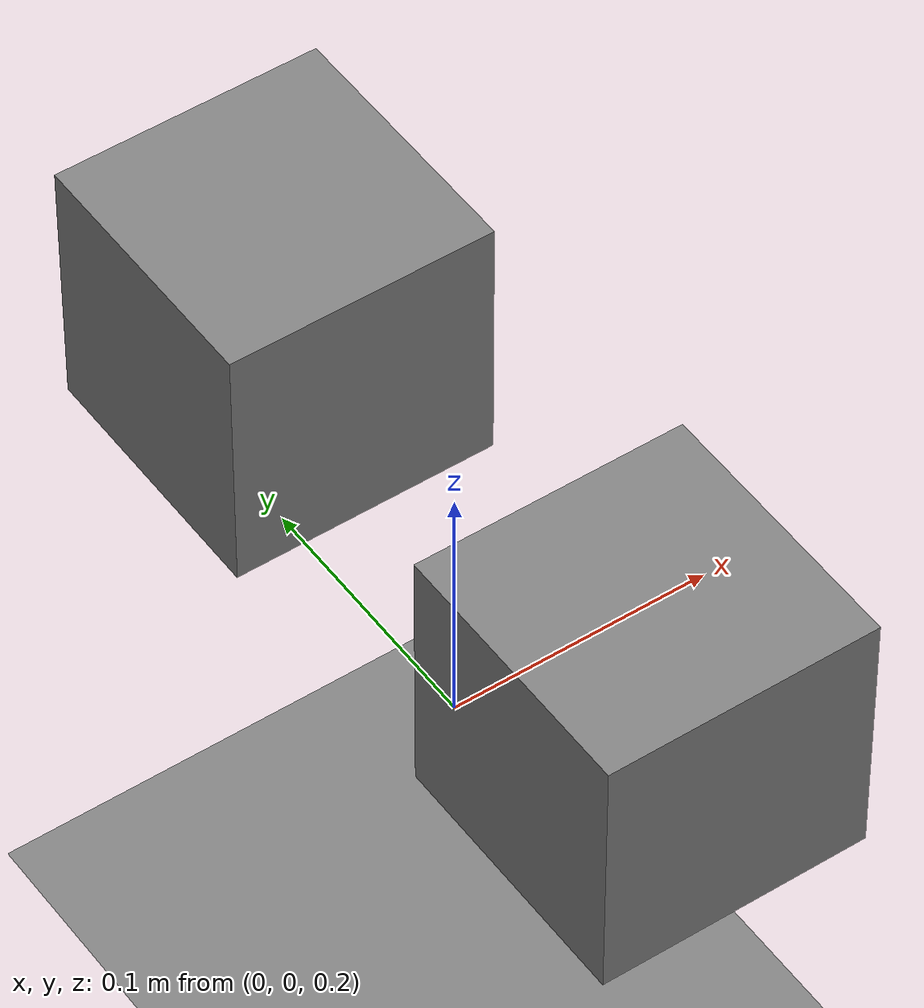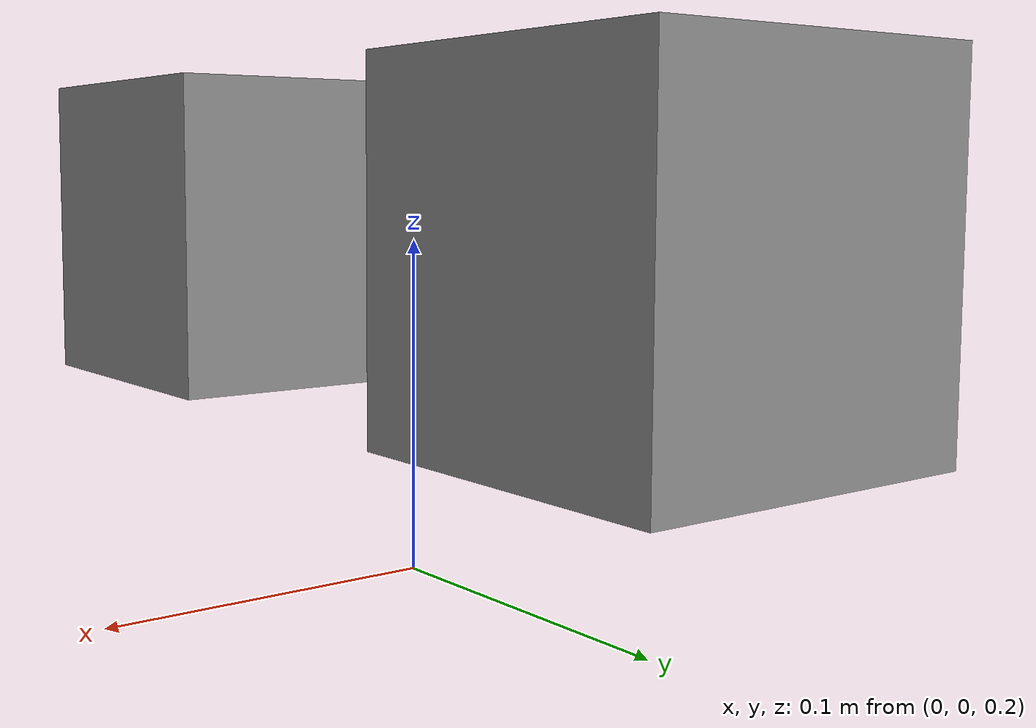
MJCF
<mujoco>

  <worldbody>
    <geom type="plane" size="1 1 .01"/>
    <light pos="0 0 2"/>
    <body pos="0 -.1 .3">
      <joint name="slide" type="slide" axis="1 0 0"/>
      <geom type="box" size=".05 .05 .05"/>
    </body>
    <body pos="0 .1 .3" mocap="true">
      <geom type="box" size=".05 .05 .05"/>
    </body>
  </worldbody>

  <actuator>
    <motor name="stateless" joint="slide"/>
    <general name="stateful" joint="slide" dyntype="integrator"/>
  </actuator>

  <keyframe>
    <key time=".1"/>
    <key qpos=".2"/>
    <key qvel=".3"/>
    <key act=".4"/>
    <key ctrl=".5 .6"/>
    <key mpos=".1 .2 .3"/>
    <key mquat="1 1 1 1"/>
  </keyframe>
</mujoco>
